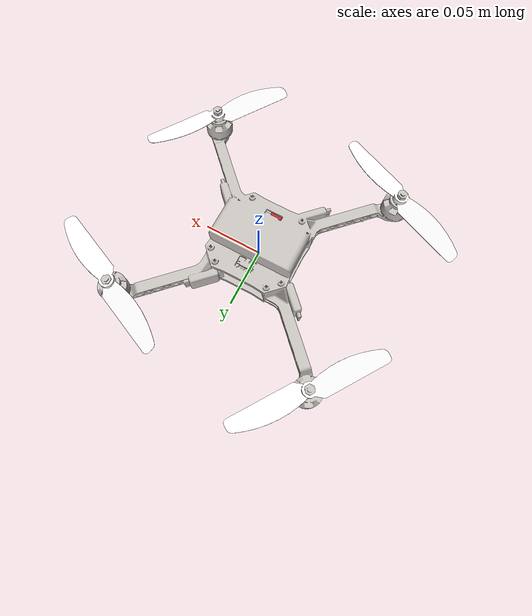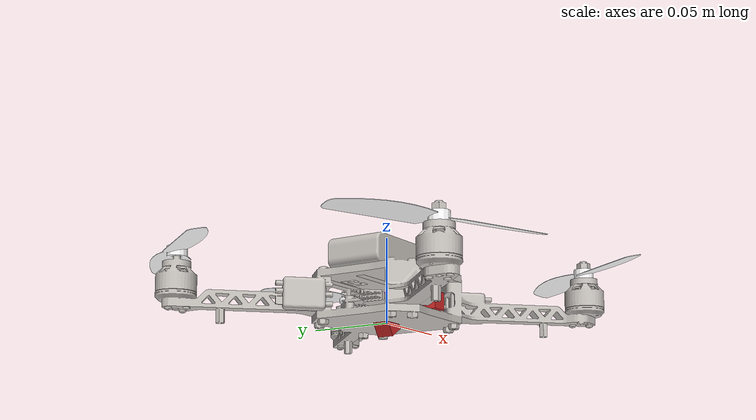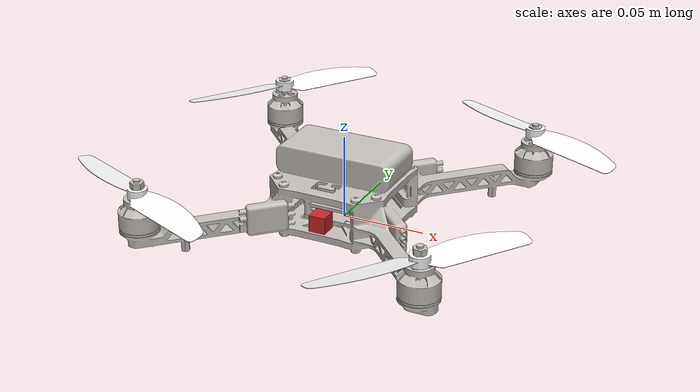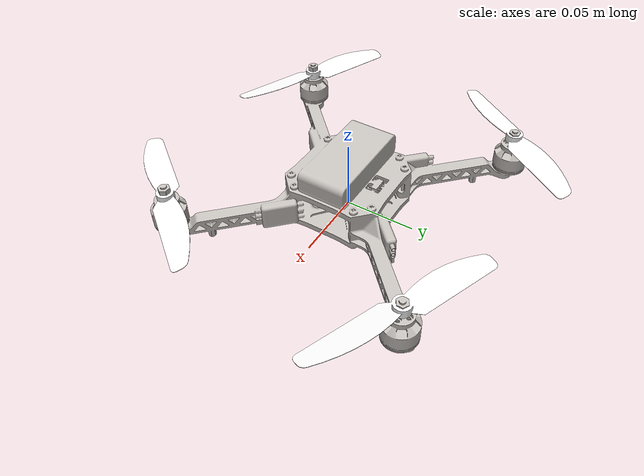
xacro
<?xml version="1.0" encoding="utf-8"?>

<robot name="viman" xmlns:xacro="http://www.ros.org/wiki/xacro">

  <!-- Sensor properties -->
  <xacro:property name="cam_origin_offset" value="0 -0.03 0.01"/>
  <xacro:property name="camera_dimensions" value="0.01 0.01 0.01"/>

  <xacro:property name="altimeter_origin_offset" value="0 0 0.015"/>
  <xacro:property name="altimeter_dimensions" value="0.005 0.005 0.002"/>

  <xacro:property name="imu_origin_offset" value="0 0 0.017"/>
  <xacro:property name="imu_dimensions" value="0.005 0.005 0.002"/>

  <!-- Macro to define propeller links -->
  <!-- Input parameters: propeller ID, pose of the joint, xyz of CoM -->
  <xacro:macro name="propeller_link" params="id com xyz rpy">

        <link name="propeller_${id}">
			<inertial>
			  <origin
				xyz="${com}"
				rpy="0 0 0" />
			  <mass
				value="0.0014789" />
			  <inertia
				ixx="1.0387E-06"
				ixy="8.0084E-24"
				ixz="6.4155E-08"
				iyy="1.0638E-06"
				iyz="-3.0356E-23"
				izz="3.1098E-08" />
			</inertial>
			<visual>
			  <origin
				xyz="0 0 0"
				rpy="0 0 0" />
			  <geometry>
				<mesh
				  filename="package://viman_visualize/meshes/propeller.STL" />
			  </geometry>
			  <material
				name="">
				<color
				  rgba="1 1 1 1" />
			  </material>
			</visual>
			<collision>
			  <origin
				xyz="0 0 0"
				rpy="0 0 0" />
			  <geometry>
				<mesh
				  filename="package://viman_visualize/meshes/propeller.STL" />
			  </geometry>
			</collision>
        </link>

        <joint name="propeller_${id}_joint" type="fixed">
            <parent link="viman_base_link"/>
            <child link="propeller_${id}"/>
            <origin rpy="${rpy}" xyz="${xyz}"/>
            <axis xyz="0 1 0" />
        </joint>

        <gazebo reference="propeller_${id}">
			<material>Gazebo/White</material>
		</gazebo>

  </xacro:macro>

  <link name="viman_base_link">
    <inertial>
      <origin
        xyz="0 0 0"
        rpy="0 0 0" />
      <mass
        value="0.6" />
      <inertia
        ixx="3.294E-05"
        ixy="-2.7157E-10"
        ixz="-4.6663E-08"
        iyy="7.1306E-05"
        iyz="5.2755E-10"
        izz="4.617E-05" />
    </inertial>
    <visual>
      <origin
        xyz="0 0 0"
        rpy="0 0 0" />
      <geometry>
        <mesh
          filename="package://viman_visualize/meshes/base_link.STL" />
      </geometry>
      <material
        name="">
        <color
          rgba="0.77647 0.75686 0.73725 1" />
      </material>
    </visual>
    <collision>
      <origin
        xyz="0 0 0"
        rpy="0 0 0" />
      <geometry>
        <mesh
          filename="package://viman_visualize/meshes/base_link_collision.STL" />
      </geometry>
    </collision>
  </link>

  <gazebo reference="viman_base_link">
	<material>Gazebo/Yellow</material>
  </gazebo>

  <xacro:propeller_link id="1" com="0 0.0027273 -1.3878E-17" xyz="-0.085003 -0.084703 0.0305" rpy="1.5708 0 -1.9677"/>
  <xacro:propeller_link id="2" com="0 0.0027273 2.0817E-17" xyz="0.084703 -0.085003 0.0305" rpy="1.5708 0 -0.60712"/>
  <xacro:propeller_link id="3" com="-2.7756E-17 -0.00027271 0" xyz="0.085003 0.084703 0.0335" rpy="1.5708 0 1.1739"/>
  <xacro:propeller_link id="4" com="2.7756E-17 -0.00027271 2.7756E-17" xyz="-0.084703 0.085003 0.0335" rpy="1.5708 0 2.5345"/>

  <link name="altimeter">
    <collision>
      <origin xyz="0 0 0" rpy="0 0 0"/>
      <geometry>
		<box size="${altimeter_dimensions}"/>
      </geometry>
    </collision>
    <visual>
      <origin xyz="0 0 0" rpy="0 0 0"/>
      <geometry>
    <box size="${altimeter_dimensions}"/>
      </geometry>
      <material name="blue"/>
    </visual>
    <inertial>
      <mass value="1e-5" />
      <origin xyz="0 0 0" rpy="0 0 0"/>
      <inertia ixx="1e-6" ixy="0" ixz="0" iyy="1e-6" iyz="0" izz="1e-6" />
    </inertial>
  </link>
  <joint name="altimeter_joint" type="fixed">
    <origin xyz="${altimeter_origin_offset}" rpy="0 0 0"/>
    <parent link="viman_base_link"/>
    <child link="altimeter"/>
  </joint>
  <gazebo reference="altimeter">
	<material>Gazebo/SkyBlue</material>
  </gazebo>

  <link name="camera-front">
    <collision>
      <origin xyz="0 0 0" rpy="0 0 0"/>
      <geometry>
    <box size="${camera_dimensions}"/>
      </geometry>
    </collision>
    <visual>
      <origin xyz="0 0 0" rpy="0 0 0"/>
      <geometry>
    <box size="${camera_dimensions}"/>
      </geometry>
      <material name="red"/>
    </visual>
    <inertial>
      <mass value="1e-5" />
      <origin xyz="0 0 0" rpy="0 0 0"/>
      <inertia ixx="1e-6" ixy="0" ixz="0" iyy="1e-6" iyz="0" izz="1e-6" />
    </inertial>
  </link>
  <joint name="camera_joint_frnt" type="fixed">
    <origin xyz="${cam_origin_offset}" rpy="0 0 -1.5708"/>
    <parent link="viman_base_link"/>
    <child link="camera-front"/>
  </joint>

  <link name="camera-down">
    <collision>
      <origin xyz="0 0 0" rpy="0 0 0"/>
      <geometry>
		<box size="${camera_dimensions}"/>
      </geometry>
    </collision>
    <visual>
      <origin xyz="0 0 0" rpy="0 0 0"/>
      <geometry>
    <box size="${camera_dimensions}"/>
      </geometry>
      <material name="red"/>
    </visual>
    <inertial>
      <mass value="1e-5" />
      <origin xyz="0 0 0" rpy="0 0 0"/>
      <inertia ixx="1e-6" ixy="0" ixz="0" iyy="1e-6" iyz="0" izz="1e-6" />
    </inertial>
  </link>
  <joint name="camera_joint_down" type="fixed">
    <origin xyz="0 0 -0.001" rpy="0 1 0"/>
    <parent link="viman_base_link"/>
    <child link="camera-down"/>
  </joint>

  <link name="imu_link">
    <collision>
      <origin xyz="0 0 0" rpy="0 0 0"/>
      <geometry>
		<box size="${imu_dimensions}"/>
      </geometry>
    </collision>
    <visual>
      <origin xyz="0 0 0" rpy="0 0 0"/>
      <geometry>
		<box size="${imu_dimensions}"/>
      </geometry>
    </visual>
    <inertial>
      <mass value="1e-5" />
      <origin xyz="0 0 0" rpy="0 0 0"/>
      <inertia ixx="1e-6" ixy="0" ixz="0" iyy="1e-6" iyz="0" izz="1e-6" />
    </inertial>
  </link>
  <joint name="imu_joint" type="fixed">
    <origin xyz="${imu_origin_offset}" rpy="0 0 0"/>
    <parent link="viman_base_link"/>
    <child link="imu_link"/>
  </joint>
  <gazebo reference="imu_link">
	<material>Gazebo/Purple</material>
  </gazebo>

  <!-- Flight plugin -->
  <gazebo>
    <plugin name='viman_flight' filename='libplugin_viman_flight.so'>
        <bodyName>viman_base_link</bodyName>
        <imuTopic>/viman/imu</imuTopic>
        <rollpitchProportionalGain>10.0</rollpitchProportionalGain>
        <rollpitchDifferentialGain>5.0</rollpitchDifferentialGain>
        <rollpitchLimit>0.5</rollpitchLimit>
        <yawProportionalGain>2.0</yawProportionalGain>
        <yawDifferentialGain>1.0</yawDifferentialGain>
        <yawLimit>1.5</yawLimit>
        <velocityXYProportionalGain>5.0</velocityXYProportionalGain>
        <velocityXYDifferentialGain>2.3</velocityXYDifferentialGain>
        <velocityXYLimit>2</velocityXYLimit>
        <velocityZProportionalGain>5.0</velocityZProportionalGain>
        <velocityZDifferentialGain>1.0</velocityZDifferentialGain>
        <velocityZLimit>-1</velocityZLimit>
        <positionXYProportionalGain>1.1</positionXYProportionalGain>
        <positionXYDifferentialGain>0.0</positionXYDifferentialGain>
        <positionXYIntegralGain>0.0</positionXYIntegralGain>
        <positionXYLimit>5</positionXYLimit>
        <positionZProportionalGain>1.0</positionZProportionalGain>
        <positionZDifferentialGain>0.2</positionZDifferentialGain>
        <positionZLimit>-1</positionZLimit>
        <maxForce>30</maxForce>
        <motionSmallNoise>0.05</motionSmallNoise>
        <motionDriftNoise>0.03</motionDriftNoise>
        <motionDriftNoiseTime>5.0</motionDriftNoiseTime>
    </plugin>
  </gazebo>

  <!-- Camera: plugin -->
  <gazebo reference="camera-front">
	<material>Gazebo/Red</material>
    <sensor type="camera" name="vm_frnt_cam">
      <update_rate>30.0</update_rate>
      <camera name="vm_frnt_cam">
        <horizontal_fov>1.3</horizontal_fov>
        <image>
          <width>640</width>
          <height>480</height>
        </image>
        <clip>
          <near>0.1</near>
          <far>30</far>
        </clip>
        <noise>
          <type>gaussian</type>
          <mean>0.0</mean>
          <stddev>0.007</stddev>
        </noise>
      </camera>
      <plugin name="camera_controller" filename="libgazebo_ros_camera.so">
        <alwaysOn>true</alwaysOn>
        <updateRate>30.0</updateRate>
        <cameraName>viman/vm_frnt_cam</cameraName>
        <imageTopicName>image</imageTopicName>
        <cameraInfoTopicName>vm_frnt_cam_info</cameraInfoTopicName>
        <frameName>camera_link1</frameName>
        <hackBaseline>0.07</hackBaseline>
        <distortionK1>0.01</distortionK1>
        <distortionK2>0.02</distortionK2>
        <distortionK3>0.01</distortionK3>
        <distortionT1>0.03</distortionT1>
        <distortionT2>0.04</distortionT2>
      </plugin>
    </sensor>
  </gazebo>

   <gazebo reference="camera-down">
  <material>Gazebo/Red</material>
    <sensor type="camera" name="vm_down_cam">
      <update_rate>30.0</update_rate>
      <camera name="vm_down_cam">
        <horizontal_fov>1.3</horizontal_fov>
        <image>
          <width>640</width>
          <height>480</height>
        </image>
        <clip>
          <near>0.1</near>
          <far>30</far>
        </clip>
        <noise>
          <type>gaussian</type>
          <mean>0.0</mean>
          <stddev>0.007</stddev>
        </noise>
      </camera>
      <plugin name="camera_controller" filename="libgazebo_ros_camera.so">
        <alwaysOn>true</alwaysOn>
        <updateRate>30.0</updateRate>
        <cameraName>viman/vm_dwn_cam</cameraName>
        <imageTopicName>image</imageTopicName>
        <cameraInfoTopicName>vm_dwn_cam_info</cameraInfoTopicName>
        <frameName>camera_link</frameName>
        <hackBaseline>0.07</hackBaseline>
        <distortionK1>0.01</distortionK1>
        <distortionK2>0.02</distortionK2>
        <distortionK3>0.01</distortionK3>
        <distortionT1>0.03</distortionT1>
        <distortionT2>0.04</distortionT2>
      </plugin>
    </sensor>
  </gazebo>

  <!-- Altimeter plugin -->
  <gazebo>
	  <plugin name='altimeter_plugin' filename='libplugin_altimeter.so'>
		<bodyName>altimeter</bodyName>
		<frameId>altimeter</frameId>
		<altimeterTopicName>/viman/height</altimeterTopicName>
		<noise>0.0</noise>
	  </plugin>
  </gazebo>

  <gazebo>
    <plugin name="imu_plugin" filename="libgazebo_ros_imu.so">
      <alwaysOn>true</alwaysOn>
      <bodyName>imu_link</bodyName>
      <topicName>/viman/imu</topicName>
      <serviceName>imu_service</serviceName>
      <gaussianNoise>0.0</gaussianNoise>
      <updateRate>20.0</updateRate>
    </plugin>
  </gazebo>

</robot>
